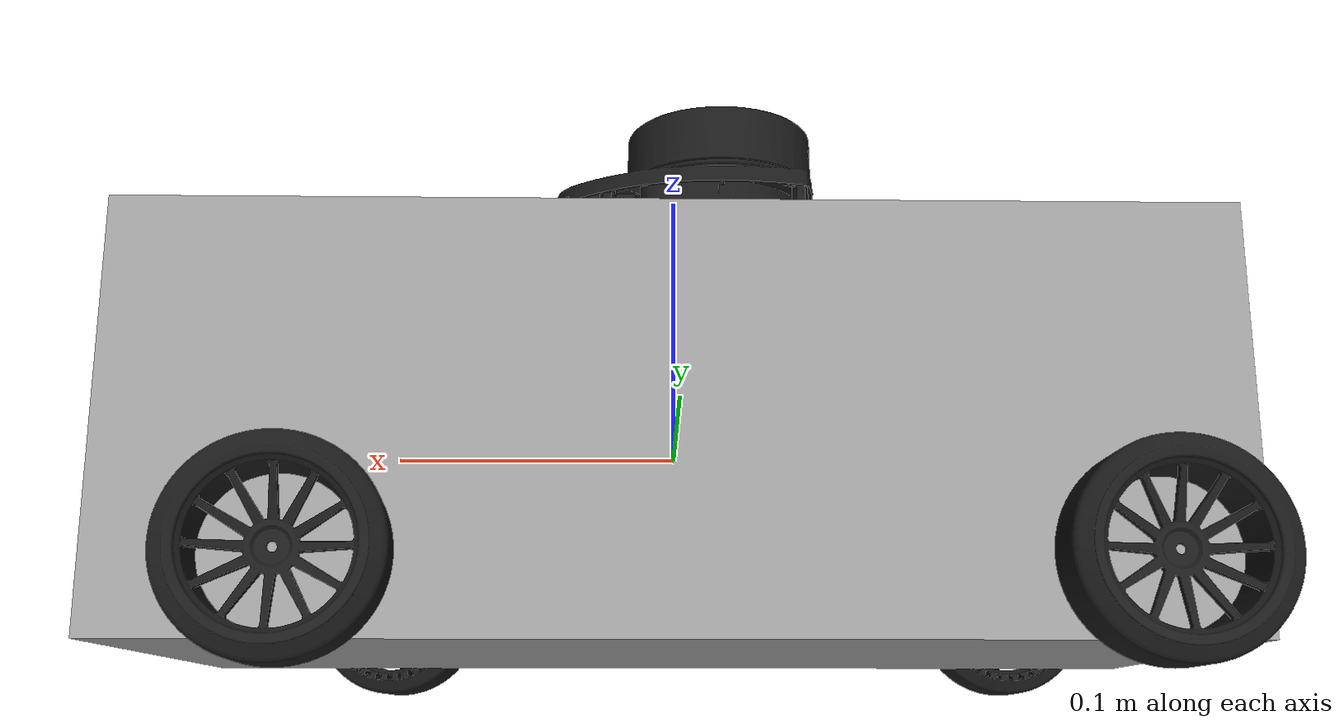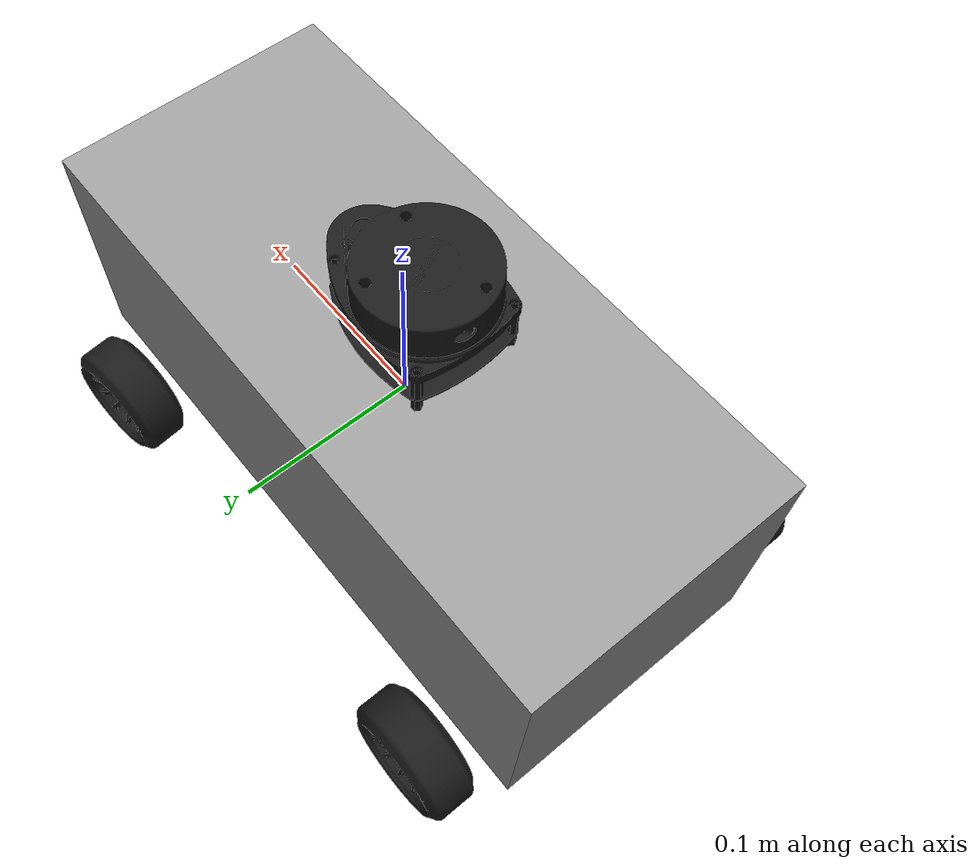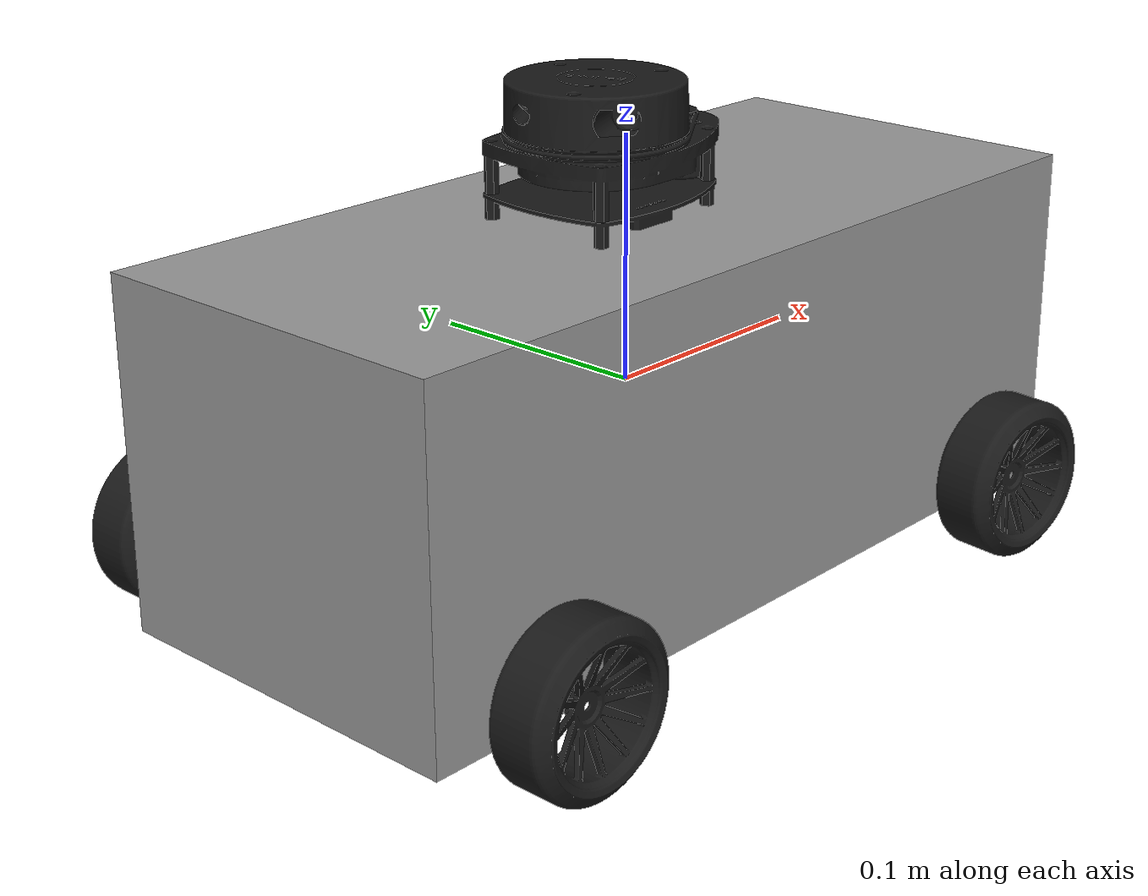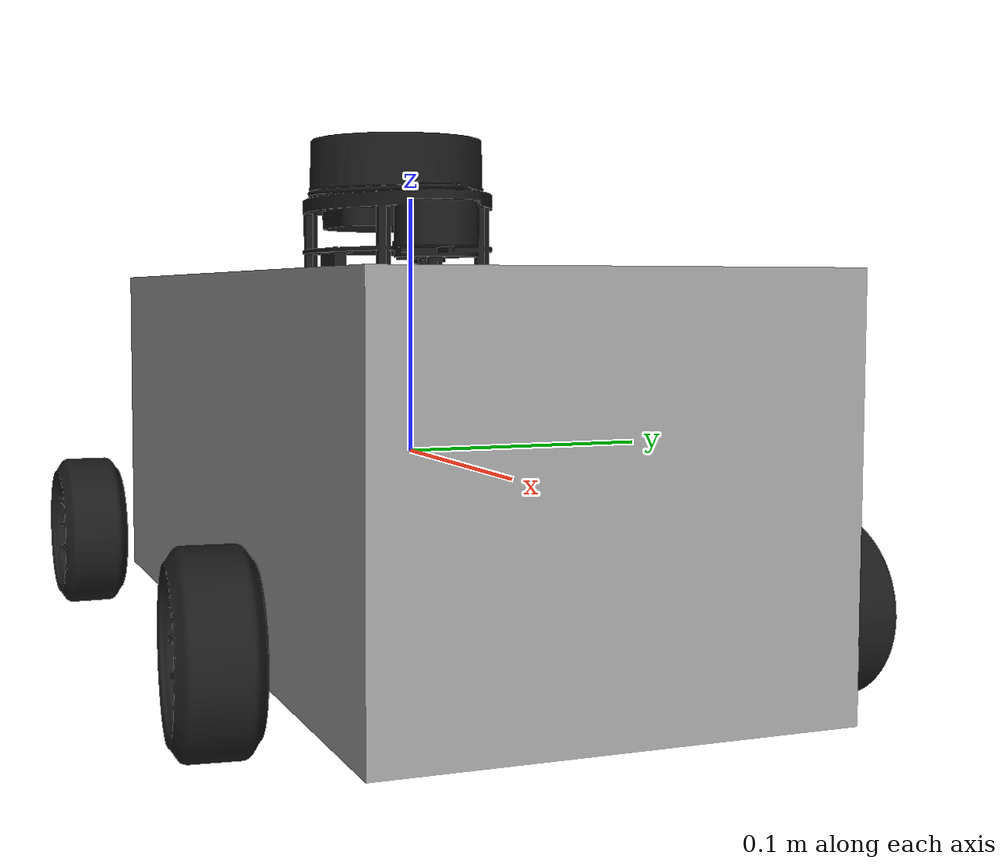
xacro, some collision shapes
<?xml version="1.0"?>
<robot xmlns:xacro="http://www.ros.org/wiki/xacro" name="racecar">

  <xacro:include filename="$(find auto_racecar)/urdf/urdf/macros.urdf.xacro"/>
  <xacro:include filename="$(find auto_racecar)/urdf/urdf/materials.urdf.xacro"/>
  <xacro:include filename="$(find auto_racecar)/urdf/urdf/racecar.gazebo"/>

  <!-- Base Link -->

  <link name="base_link"/>

  <!-- Chassis -->

  <joint name="chassis_joint" type="fixed">
    <origin xyz="0 0 0" rpy="0 0 0"/>
    <parent link="base_link"/>
    <child link="chassis"/>
  </joint>

  <link name="chassis">
    <visual>
      <xacro:chassis_geometry/>
      <material name="grey"/>
    </visual>
    <collision>
      <xacro:chassis_collision/>
    </collision>
    <inertial>
      <xacro:chassis_inertia/>
    </inertial>
  </link>

  <!-- Left Steering Hinge -->

  <joint name="left_steering_hinge_joint" type="revolute">
    <origin xyz="0.1161 0.1080 -0.0471" rpy="0 0 0.1"/>
    <parent link="chassis"/>
    <child link="left_steering_hinge"/>
    <axis xyz="0 0 1"/>
    <limit lower="-0.5" upper="0.5" effort="10" velocity="100"/>
  </joint>

  <link name="left_steering_hinge">
    <visual>
      <xacro:steering_hinge_geometry/>
      <material name="grey"/>
    </visual>
    <inertial>
      <xacro:steering_hinge_inertia/>
    </inertial>
  </link>

  <xacro:steering_hinge_transmission name="left"/>

  <!-- Right Steering Hinge -->

  <joint name="right_steering_hinge_joint" type="revolute">
    <origin xyz="0.1161 -0.1080 -0.0471" rpy="0 0 -0.1"/>
    <parent link="chassis"/>
    <child link="right_steering_hinge"/>
    <axis xyz="0 0 1"/>
    <limit lower="-0.5" upper="0.5" effort="10" velocity="100"/>
  </joint>

  <link name="right_steering_hinge">
    <visual>
      <xacro:steering_hinge_geometry/>
      <material name="grey"/>
    </visual>
    <inertial>
      <xacro:steering_hinge_inertia/>
    </inertial>
  </link>

  <xacro:steering_hinge_transmission name="right"/>

  <!-- Left Front Wheel -->

  <joint name="left_front_wheel_joint" type="continuous">
    <origin xyz="0 0 0" rpy="0 0 0"/>
    <parent link="left_steering_hinge"/>
    <child link="left_front_wheel"/>
    <axis xyz="0 1 0"/>
    <limit effort="10" velocity="100"/>
  </joint>

  <link name="left_front_wheel">
    <visual>
      <xacro:left_wheel_geometry/>
      <material name="black"/>
    </visual>
    <collision>
      <xacro:left_wheel_collision/>
    </collision>
    <inertial>
      <xacro:left_wheel_inertia/>
    </inertial>
  </link>

  <xacro:wheel_transmission name="left_front_wheel"/>

  <!-- Right Front Wheel -->

  <joint name="right_front_wheel_joint" type="continuous">
    <origin xyz="0 0 0" rpy="0 0 0"/>
    <parent link="right_steering_hinge"/>
    <child link="right_front_wheel"/>
    <axis xyz="0 1 0"/>
    <limit effort="10" velocity="100"/>
  </joint>

  <link name="right_front_wheel">
    <visual>
      <xacro:right_wheel_geometry/>
      <material name="black"/>
    </visual>
    <collision>
      <xacro:right_wheel_collision/>
    </collision>
    <inertial>
      <xacro:right_wheel_inertia/>
    </inertial>
  </link>

  <xacro:wheel_transmission name="right_front_wheel"/>

  <!-- Left Rear Wheel -->

  <joint name="left_rear_wheel_joint" type="continuous">
    <origin xyz="-0.1432 0.1080 -0.0471" rpy="0 0 0"/>
    <parent link="chassis"/>
    <child link="left_rear_wheel"/>
    <axis xyz="0 1 0"/>
    <limit effort="10" velocity="100"/>
  </joint>

  <link name="left_rear_wheel">
    <visual>
      <xacro:left_wheel_geometry/>
      <material name="black" />
    </visual>
    <collision>
      <xacro:left_wheel_collision/>
    </collision>
    <inertial>
      <xacro:left_wheel_inertia/>
    </inertial>
  </link>

  <xacro:wheel_transmission name="left_rear_wheel"/>

  <!-- Right Rear Wheel -->

  <joint name="right_rear_wheel_joint" type="continuous">
    <origin xyz="-0.1432 -0.1080 -0.0471" rpy="0 0 0"/>
    <parent link="chassis"/>
    <child link="right_rear_wheel"/>
    <axis xyz="0 1 0"/>
    <limit effort="10" velocity="100"/>
  </joint>

  <link name="right_rear_wheel">
    <visual>
      <xacro:right_wheel_geometry/>
      <material name="black"/>
    </visual>
    <collision>
      <xacro:right_wheel_collision/>
    </collision>
    <inertial>
      <xacro:right_wheel_inertia/>
    </inertial>
  </link>

  <xacro:wheel_transmission name="right_rear_wheel"/>

  <!-- IMU -->

  <joint name="base_imu_joint" type="fixed">
    <origin xyz="-0.0177 0 0.0408" rpy="0 0 0"/>
    <parent link="chassis"/>
    <child link="base_imu_link"/>
  </joint>

  <link name="base_imu_link">
    <visual>
      <xacro:imu_geometry/>
      <material name="blue"/>
    </visual>
    <collision>
      <xacro:imu_collision/>
    </collision>
    <inertial>
      <xacro:imu_inertia/>
    </inertial>
  </link>

  <!-- Laser -->

  <joint name="base_laser_joint" type="fixed">
    <origin xyz="-0.0177 0 0.0968" rpy="0 0 0"/>
    <parent link="chassis"/>
    <child link="base_laser_link"/>
  </joint>

  <link name="base_laser_link">
    <visual>
      <xacro:laser_geometry/>
      <material name="black"/>
    </visual>
    <collision>
      <xacro:laser_collision/>
    </collision>
    <inertial>
      <xacro:laser_inertia/>
    </inertial>
  </link>

</robot>

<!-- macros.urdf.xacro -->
<robot xmlns:xacro="http://www.ros.org/wiki/xacro" name="racecar">

  <!-- Geometry -->

  <xacro:macro name="chassis_geometry">
    <origin xyz="0 0 0" rpy="0 0 0" />
    <geometry>
      <mesh filename="package://auto_racecar/urdf/meshes/chassis.stl"/>
    </geometry>
  </xacro:macro>

  <xacro:macro name="steering_hinge_geometry">
    <origin xyz="0 0 0" rpy="0 0 0" />
    <geometry>
      <cylinder length="0.0100" radius="0.0025" />
    </geometry>
  </xacro:macro>

  <xacro:macro name="left_wheel_geometry">
    <origin xyz="0 0 0" rpy="-1.571 0 0" />
    <geometry>
      <mesh filename="package://auto_racecar/urdf/meshes/wheel.stl"/>
    </geometry>
  </xacro:macro>

  <xacro:macro name="right_wheel_geometry">
    <origin xyz="0 0 0" rpy="1.571 0 0" />
    <geometry>
      <mesh filename="package://auto_racecar/urdf/meshes/wheel.stl"/>
    </geometry>
  </xacro:macro>

  <xacro:macro name="imu_geometry">
    <origin xyz="0 0 0" rpy="0 0 0" />
    <geometry>
      <mesh filename="package://auto_racecar/urdf/meshes/imu.stl"/>
    </geometry>
  </xacro:macro>

  <xacro:macro name="laser_geometry">
    <origin xyz="0.0134 0 0" rpy="0 0 0" />
    <geometry>
      <mesh filename="package://auto_racecar/urdf/meshes/lidar.stl"/>
    </geometry>
  </xacro:macro>

  <!-- Collision -->

  <xacro:macro name="chassis_collision">
    <origin xyz="0 0 0" rpy="0 0 0"/>
    <geometry>
      <box size="0.3654 0.1600 0.1412"/>
    </geometry>
  </xacro:macro>

  <xacro:macro name="left_wheel_collision">
    <origin xyz="0 0 0" rpy="-1.571 0 0"/>
    <geometry>
      <cylinder length="0.0272" radius="0.0332"/>
    </geometry>
  </xacro:macro>

  <xacro:macro name="right_wheel_collision">
    <origin xyz="0 0 0" rpy="1.571 0 0"/>
    <geometry>
      <cylinder length="0.0272" radius="0.0332"/>
    </geometry>
  </xacro:macro>

  <xacro:macro name="imu_collision">
    <origin xyz="0 0 0" rpy="0 0 0"/>
    <geometry>
      <box size="0.0139 0.0202 0.0127"/>
    </geometry>
  </xacro:macro>

  <xacro:macro name="laser_collision">
    <origin xyz="0.0134 0 0" rpy="0 0 0"/>
    <geometry>
      <box size="0.0967 0.0703 0.0555"/>
    </geometry>
  </xacro:macro>

  <!-- Inertial -->

  <xacro:macro name="chassis_inertia">
    <origin xyz="0 0 0" rpy="0 0 0" />
    <mass value="3.000" />
    <inertia ixx="0.0129" ixy="0"      ixz="0"
                          iyy="0.0384" iyz="0"
                                       izz="0.0413"/>
  </xacro:macro>

  <xacro:macro name="steering_hinge_inertia">
    <origin xyz="0 0 0" rpy="0 0 0"/>
    <mass value="0.1000"/>
    <inertia ixx="9.896E-7" ixy="0"         ixz="0"
                            iyy="9.896E-7"  iyz="0"
                                            izz="3.125E-7"/>
  </xacro:macro>

  <xacro:macro name="left_wheel_inertia">
    <origin xyz="0 0 0" rpy="-1.571 0 0"/>
    <mass value="0.1000"/>
    <inertia ixx="3.000E-5" ixy="0"        ixz="0"
                            iyy="3.000E-5" iyz="0"
                                           izz="5.510E-5"/>
  </xacro:macro>

  <xacro:macro name="right_wheel_inertia">
    <origin xyz="0 0 0" rpy="1.571 0 0"/>
    <mass value="0.1000"/>
    <inertia ixx="3.000E-5" ixy="0"        ixz="0"
                            iyy="3.000E-5" iyz="0"
                                           izz="5.510E-5"/>
  </xacro:macro>

  <xacro:macro name="imu_inertia">
    <origin xyz="0 0 0" rpy="0 0 0"/>
    <mass value="0.0100"/>
    <inertia ixx="4.744E-7" ixy="0"        ixz="0"
                            iyy="2.954E-7" iyz="0"
                                           izz="5.010E-7"/>
  </xacro:macro>

  <xacro:macro name="laser_inertia">
    <origin xyz="0.0134 0 0" rpy="0 0 0"/>
    <mass value="0.1700"/>
    <inertia ixx="0.0001" ixy="0"      ixz="0"
                          iyy="0.0002" iyz="0"
                                       izz="0.0002"/>
  </xacro:macro>

  <!-- Transmission -->

  <xacro:macro name="steering_hinge_transmission" params="name">
    <transmission name="${name}_steering_hinge_transmission">
      <type>transmission_interface/SimpleTransmission</type>
      <joint name="${name}_steering_hinge_joint">
        <hardwareInterface>hardware_interface/PositionJointInterface</hardwareInterface>
      </joint>
      <actuator name="${name}_steering_hinge_motor">
        <mechanicalReduction>1</mechanicalReduction>
      </actuator>
    </transmission>
  </xacro:macro>

  <xacro:macro name="wheel_transmission" params="name">
    <transmission name="${name}_transmission">
      <type>transmission_interface/SimpleTransmission</type>
      <joint name="${name}_joint">
        <hardwareInterface>hardware_interface/VelocityJointInterface</hardwareInterface>
      </joint>
      <actuator name="${name}_motor">
        <mechanicalReduction>1</mechanicalReduction>
      </actuator>
    </transmission>
  </xacro:macro>

</robot>

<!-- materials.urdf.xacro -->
<robot xmlns:xacro="http://www.ros.org/wiki/xacro" name="racecar">

  <material name="grey">
    <color rgba="0.6 0.6 0.6 1.0"/>
  </material>

  <material name="black">
    <color rgba="0.1 0.1 0.1 1.0"/>
  </material>

  <material name="blue">
    <color rgba="0.0 0.0 0.8 1.0"/>
  </material>

</robot>
